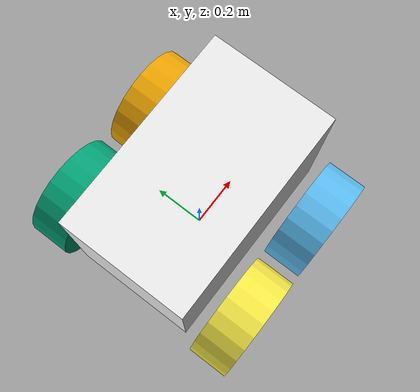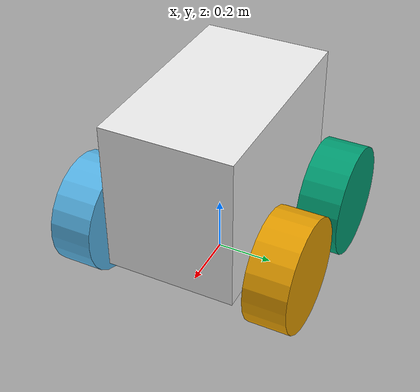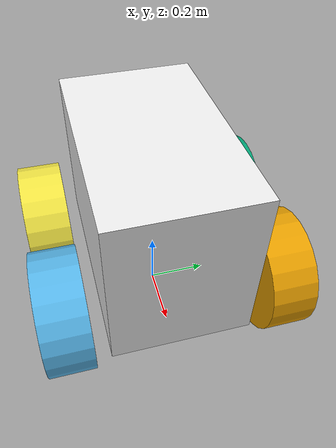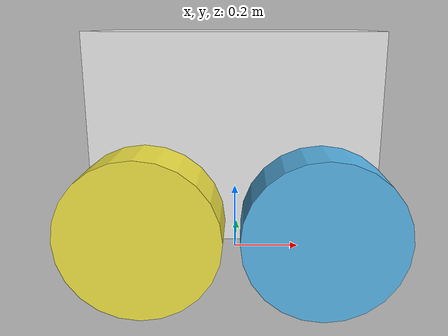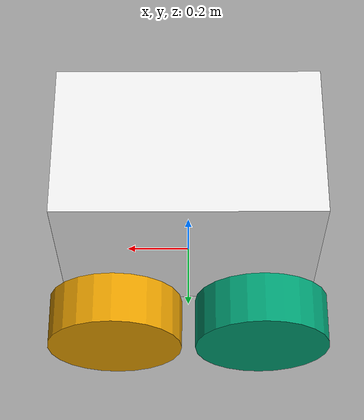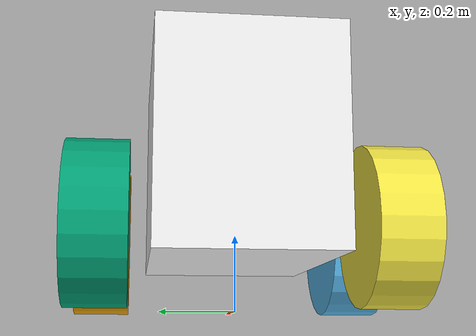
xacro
<?xml version="1.0"?>

<robot name="inspector_bot" xmlns:xacro="http://ros.org/wiki/xacro">

  <xacro:arg name="robot_namespace" default="/" />

  <!-- Included URDF/XACRO Files -->
  <xacro:include filename="$(find mm_description)/urdf/components/inspector_bot.urdf.xacro" />
  <xacro:bare_base/>

</robot>

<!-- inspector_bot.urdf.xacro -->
<robot name="inspector_bot" xmlns:xacro="http://ros.org/wiki/xacro">

  <xacro:arg name="robot_namespace" default="/" />

  <xacro:include filename="$(find mm_description)/urdf/components/wheel.urdf.xacro" />
  <xacro:include filename="$(find mm_description)/urdf/components/bare_base.urdf.xacro" />

  <xacro:property name="base_x_size" value="0.76" />
  <xacro:property name="base_y_size" value="0.46" />
  <xacro:property name="base_z_size" value="0.55" />

  <xacro:property name="M_PI" value="3.14159"/>

  <!-- Base Size -->
  <!-- Wheel Mounting Positions -->
  <xacro:property name="wheelbase" value="0.44" />
  <xacro:property name="track" value="0.71" />
  <xacro:property name="wheel_vertical_offset" value="0.2" />

  <!-- Wheel Properties -->
  <xacro:property name="wheel_length" value="0.15" />
  <xacro:property name="wheel_radius" value="0.2" />
  <xacro:property name="base_center_height" value="${wheel_vertical_offset + wheel_radius}" />
  <!-- Base link is the center of the robot's bottom plate -->

  <!-- inspector_bot wheel macros -->
  <xacro:inspector_bot_wheel wheel_prefix="front_left">
    <origin xyz="${wheelbase/2} ${track/2} ${wheel_vertical_offset}" rpy="0 0 0" />
  </xacro:inspector_bot_wheel>
  <xacro:inspector_bot_wheel wheel_prefix="front_right">
    <origin xyz="${wheelbase/2} ${-track/2} ${wheel_vertical_offset}" rpy="0 0 0" />
  </xacro:inspector_bot_wheel>
  <xacro:inspector_bot_wheel wheel_prefix="rear_left">
    <origin xyz="${-wheelbase/2} ${track/2} ${wheel_vertical_offset}" rpy="0 0 0" />
  </xacro:inspector_bot_wheel>
  <xacro:inspector_bot_wheel wheel_prefix="rear_right">
    <origin xyz="${-wheelbase/2} ${-track/2} ${wheel_vertical_offset}" rpy="0 0 0" />
  </xacro:inspector_bot_wheel>

</robot>

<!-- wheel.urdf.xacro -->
<robot xmlns:xacro="http://ros.org/wiki/xacro" name="inspector_bot_wheel">

	<xacro:macro name="inspector_bot_wheel" params="wheel_prefix *joint_pose">
		<link name="${wheel_prefix}_wheel_link">
			<inertial>
				<mass value="2.637" />
				<origin xyz="0 0 0" />
				<inertia  ixx="0.02467" ixy="0" ixz="0" iyy="0.04411" iyz="0" izz="0.02467" />
			</inertial>
			<visual>
				<origin xyz="0 0 0" rpy="${M_PI/2} 0 0" />
			    <geometry>
			      <cylinder length="${wheel_length}" radius="${wheel_radius}"/>
			    </geometry>
			</visual>
			<collision>
				<origin xyz="0 0 0" rpy="${M_PI/2} 0 0" />
			    <geometry>
			      <cylinder length="${wheel_length}" radius="${wheel_radius}"/>
			    </geometry>
			</collision>
		</link>

		<joint name="${wheel_prefix}_wheel" type="continuous">
			<parent link="bare_base_link"/>
			<child link="${wheel_prefix}_wheel_link"/>
			<xacro:insert_block name="joint_pose"/>
			<axis xyz="0 1 0" rpy="0 0 0" />
		</joint>

	</xacro:macro>
</robot>

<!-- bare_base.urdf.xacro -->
<robot xmlns:xacro="http://ros.org/wiki/xacro" name="bare_base">

    <xacro:macro name="bare_base" params="">
       <link name="bare_base_link">
          <visual>
            <origin xyz="0 0 ${base_center_height}" rpy="0 0 0" />
            <geometry>
              <box size = "${base_x_size}  ${base_y_size}  ${base_z_size}"/>
            </geometry>
            <material name="white"/>
          </visual>
          <collision>
            <origin xyz="0 0 ${base_center_height}" rpy="0 0 0" />
            <geometry>
              <box size = "${base_x_size}  ${base_y_size}  ${base_z_size}"/>
            </geometry>
          </collision>
        </link>

        <link name="base_footprint"/>

        <joint name="base_footprint_joint" type="fixed">
          <origin xyz="0 0 -${base_center_height}" rpy="0 0 0" />
          <parent link="bare_base_link" />
          <child link="base_footprint" />
        </joint>

        <!-- Interial link stores the robot's inertial information -->
        <link name="inertial_link">
          <inertial>
            <mass value="50"/>
            <origin xyz="0 0 ${base_center_height}"/>
            <inertia ixx="2.14" ixy="0.0" ixz="0.0" iyy="3.67" iyz="0.0" izz="3.29"/>
          </inertial>
        </link>

        <joint name="inertial_joint" type="fixed">
          <origin xyz="0 0 0" rpy="0 0 0" />
          <parent link="bare_base_link" />
          <child link="inertial_link" />
        </joint>

      <link name="world2"/>
      <joint name="world_joint" type="floating">
        <parent link="world2"/>
        <child link="bare_base_link"/>
        <axis xyz="0 0 1" rpy="0 0 0" />
      </joint>

    </xacro:macro>
</robot>
